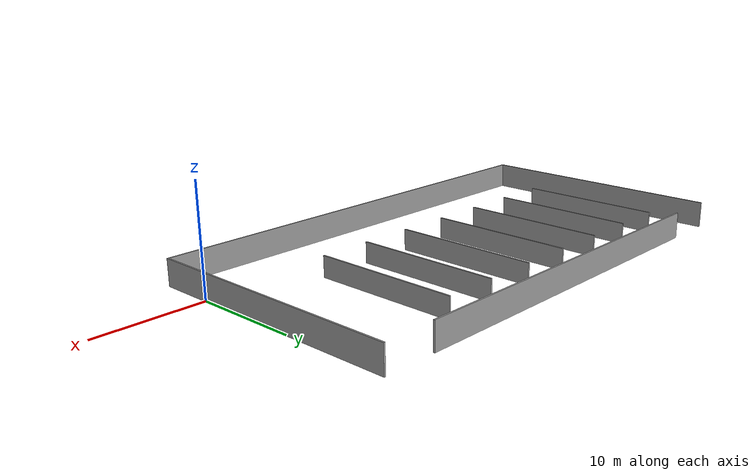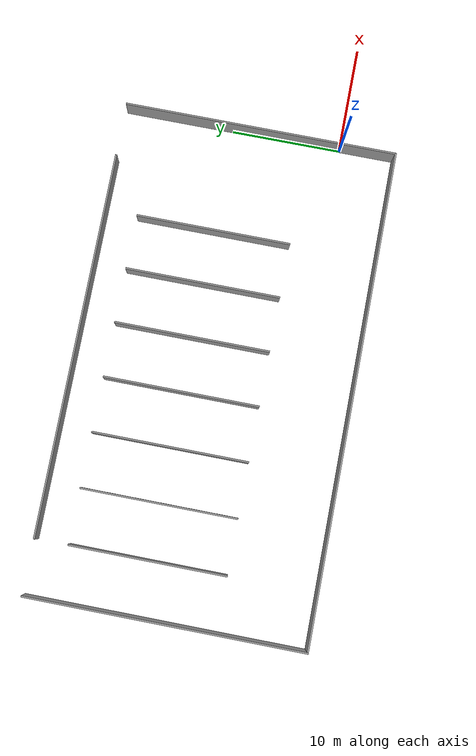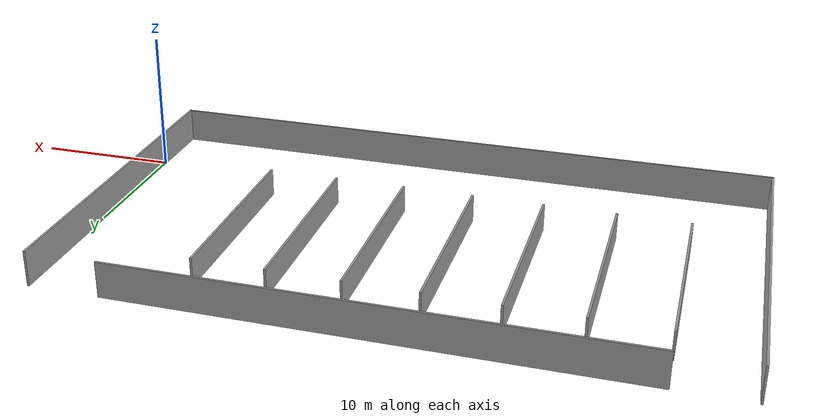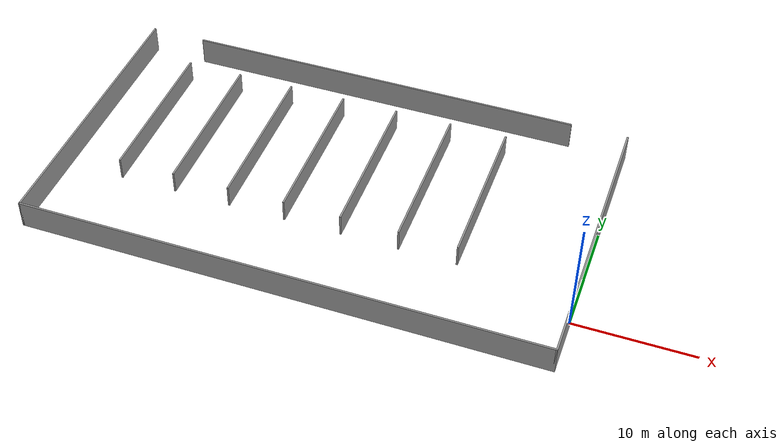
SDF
<?xml version='1.0'?>
<sdf version='1.7'>
  <model name='supermarket'>
    <pose>-22.5 7.5 0 0 -0 0</pose>
    <link name='Wall_11'>
      <collision name='Wall_11_Collision'>
        <geometry>
          <box>
            <size>25.15 0.15 2.5</size>
          </box>
        </geometry>
        <pose>0 0 1.25 0 -0 0</pose>
      </collision>
      <visual name='Wall_11_Visual'>
        <pose>0 0 1.25 0 -0 0</pose>
        <geometry>
          <box>
            <size>25.15 0.15 2.5</size>
          </box>
        </geometry>
        <material>
          <script>
            <uri>file://media/materials/scripts/gazebo.material</uri>
            <name>Gazebo/Grey</name>
          </script>
          <ambient>1 1 1 1</ambient>
        </material>
        <meta>
          <layer>0</layer>
        </meta>
      </visual>
      <pose>22.5 0 0 0 -0 1.5708</pose>
    </link>
    <link name='Wall_25'>
      <collision name='Wall_25_Collision'>
        <geometry>
          <box>
            <size>14.15 0.15 2</size>
          </box>
        </geometry>
        <pose>0 0 1 0 -0 0</pose>
      </collision>
      <visual name='Wall_25_Visual'>
        <pose>0 0 1 0 -0 0</pose>
        <geometry>
          <box>
            <size>14.15 0.15 2</size>
          </box>
        </geometry>
        <material>
          <script>
            <uri>file://media/materials/scripts/gazebo.material</uri>
            <name>Gazebo/Grey</name>
          </script>
          <ambient>1 1 1 1</ambient>
        </material>
        <meta>
          <layer>0</layer>
        </meta>
      </visual>
      <pose>-17.5 2.5 0 0 -0 -1.5708</pose>
    </link>
    <link name='Wall_30'>
      <collision name='Wall_30_Collision'>
        <geometry>
          <box>
            <size>14.1499 0.15 2</size>
          </box>
        </geometry>
        <pose>0 0 1 0 -0 0</pose>
      </collision>
      <visual name='Wall_30_Visual'>
        <pose>0 0 1 0 -0 0</pose>
        <geometry>
          <box>
            <size>14.1499 0.15 2</size>
          </box>
        </geometry>
        <material>
          <script>
            <uri>file://media/materials/scripts/gazebo.material</uri>
            <name>Gazebo/Grey</name>
          </script>
          <ambient>1 1 1 1</ambient>
        </material>
        <meta>
          <layer>0</layer>
        </meta>
      </visual>
      <pose>-12.5 2.5 0 0 -0 -1.5708</pose>
    </link>
    <link name='Wall_32'>
      <collision name='Wall_32_Collision'>
        <geometry>
          <box>
            <size>14.15 0.15 2</size>
          </box>
        </geometry>
        <pose>0 0 1 0 -0 0</pose>
      </collision>
      <visual name='Wall_32_Visual'>
        <pose>0 0 1 0 -0 0</pose>
        <geometry>
          <box>
            <size>14.15 0.15 2</size>
          </box>
        </geometry>
        <material>
          <script>
            <uri>file://media/materials/scripts/gazebo.material</uri>
            <name>Gazebo/Grey</name>
          </script>
          <ambient>1 1 1 1</ambient>
        </material>
        <meta>
          <layer>0</layer>
        </meta>
      </visual>
      <pose>-7.5 2.5 0 0 -0 -1.5708</pose>
    </link>
    <link name='Wall_34'>
      <collision name='Wall_34_Collision'>
        <geometry>
          <box>
            <size>14.15 0.15 2</size>
          </box>
        </geometry>
        <pose>0 0 1 0 -0 0</pose>
      </collision>
      <visual name='Wall_34_Visual'>
        <pose>0 0 1 0 -0 0</pose>
        <geometry>
          <box>
            <size>14.15 0.15 2</size>
          </box>
        </geometry>
        <material>
          <script>
            <uri>file://media/materials/scripts/gazebo.material</uri>
            <name>Gazebo/Grey</name>
          </script>
          <ambient>1 1 1 1</ambient>
        </material>
        <meta>
          <layer>0</layer>
        </meta>
      </visual>
      <pose>-2.5 2.5 0 0 -0 -1.5708</pose>
    </link>
    <link name='Wall_36'>
      <collision name='Wall_36_Collision'>
        <geometry>
          <box>
            <size>14.15 0.15 2</size>
          </box>
        </geometry>
        <pose>0 0 1 0 -0 0</pose>
      </collision>
      <visual name='Wall_36_Visual'>
        <pose>0 0 1 0 -0 0</pose>
        <geometry>
          <box>
            <size>14.15 0.15 2</size>
          </box>
        </geometry>
        <material>
          <script>
            <uri>file://media/materials/scripts/gazebo.material</uri>
            <name>Gazebo/Grey</name>
          </script>
          <ambient>1 1 1 1</ambient>
        </material>
        <meta>
          <layer>0</layer>
        </meta>
      </visual>
      <pose>2.5 2.5 0 0 -0 -1.5708</pose>
    </link>
    <link name='Wall_38'>
      <collision name='Wall_38_Collision'>
        <geometry>
          <box>
            <size>14.15 0.15 2</size>
          </box>
        </geometry>
        <pose>0 0 1 0 -0 0</pose>
      </collision>
      <visual name='Wall_38_Visual'>
        <pose>0 0 1 0 -0 0</pose>
        <geometry>
          <box>
            <size>14.15 0.15 2</size>
          </box>
        </geometry>
        <material>
          <script>
            <uri>file://media/materials/scripts/gazebo.material</uri>
            <name>Gazebo/Grey</name>
          </script>
          <ambient>1 1 1 1</ambient>
        </material>
        <meta>
          <layer>0</layer>
        </meta>
      </visual>
      <pose>7.5 2.5 0 0 -0 -1.5708</pose>
    </link>
    <link name='Wall_40'>
      <collision name='Wall_40_Collision'>
        <geometry>
          <box>
            <size>14.15 0.15 2</size>
          </box>
        </geometry>
        <pose>0 0 1 0 -0 0</pose>
      </collision>
      <visual name='Wall_40_Visual'>
        <pose>0 0 1 0 -0 0</pose>
        <geometry>
          <box>
            <size>14.15 0.15 2</size>
          </box>
        </geometry>
        <material>
          <script>
            <uri>file://media/materials/scripts/gazebo.material</uri>
            <name>Gazebo/Grey</name>
          </script>
          <ambient>1 1 1 1</ambient>
        </material>
        <meta>
          <layer>0</layer>
        </meta>
      </visual>
      <pose>12.5 2.5 0 0 -0 -1.5708</pose>
    </link>
    <link name='Wall_5'>
      <collision name='Wall_5_Collision'>
        <geometry>
          <box>
            <size>25.15 0.15 2.5</size>
          </box>
        </geometry>
        <pose>0 0 1.25 0 -0 0</pose>
      </collision>
      <visual name='Wall_5_Visual'>
        <pose>0 0 1.25 0 -0 0</pose>
        <geometry>
          <box>
            <size>25.15 0.15 2.5</size>
          </box>
        </geometry>
        <material>
          <script>
            <uri>file://media/materials/scripts/gazebo.material</uri>
            <name>Gazebo/Grey</name>
          </script>
          <ambient>1 1 1 1</ambient>
        </material>
        <meta>
          <layer>0</layer>
        </meta>
      </visual>
      <pose>-22.5 0 0 0 -0 -1.5708</pose>
    </link>
    <link name='Wall_6'>
      <collision name='Wall_6_Collision'>
        <geometry>
          <box>
            <size>45.15 0.15 2.5</size>
          </box>
        </geometry>
        <pose>0 0 1.25 0 -0 0</pose>
      </collision>
      <visual name='Wall_6_Visual'>
        <pose>0 0 1.25 0 -0 0</pose>
        <geometry>
          <box>
            <size>45.15 0.15 2.5</size>
          </box>
        </geometry>
        <material>
          <script>
            <uri>file://media/materials/scripts/gazebo.material</uri>
            <name>Gazebo/Grey</name>
          </script>
          <ambient>1 1 1 1</ambient>
        </material>
        <meta>
          <layer>0</layer>
        </meta>
      </visual>
      <pose>-0 -12.5 0 0 -0 0</pose>
    </link>
    <link name='Wall_8'>
      <collision name='Wall_8_Collision'>
        <geometry>
          <box>
            <size>35.15 0.15 2.5</size>
          </box>
        </geometry>
        <pose>0 0 1.25 0 -0 0</pose>
      </collision>
      <visual name='Wall_8_Visual'>
        <pose>0 0 1.25 0 -0 0</pose>
        <geometry>
          <box>
            <size>35.15 0.15 2.5</size>
          </box>
        </geometry>
        <material>
          <script>
            <uri>file://media/materials/scripts/gazebo.material</uri>
            <name>Gazebo/Grey</name>
          </script>
          <ambient>1 1 1 1</ambient>
        </material>
        <meta>
          <layer>0</layer>
        </meta>
      </visual>
      <pose>-0 12.5 0 0 -0 3.14159</pose>
    </link>
    <static>1</static>
  </model>
</sdf>
